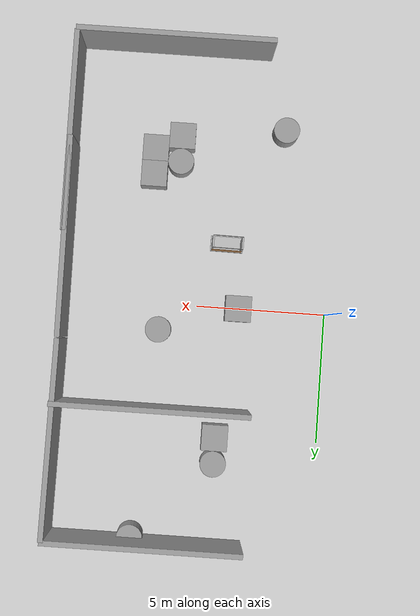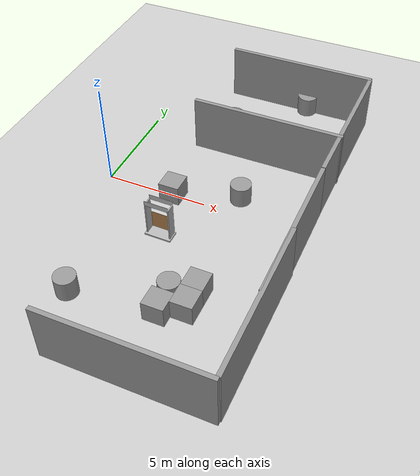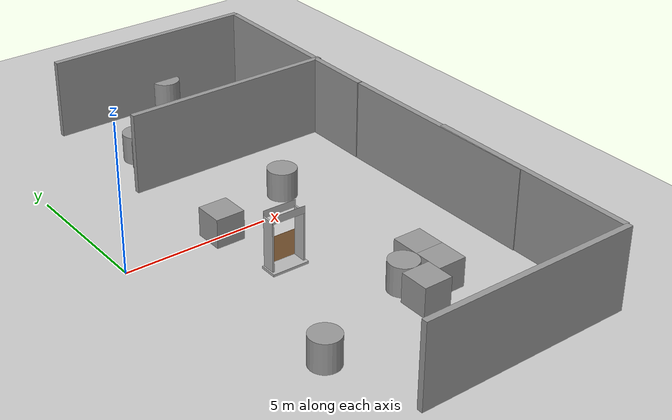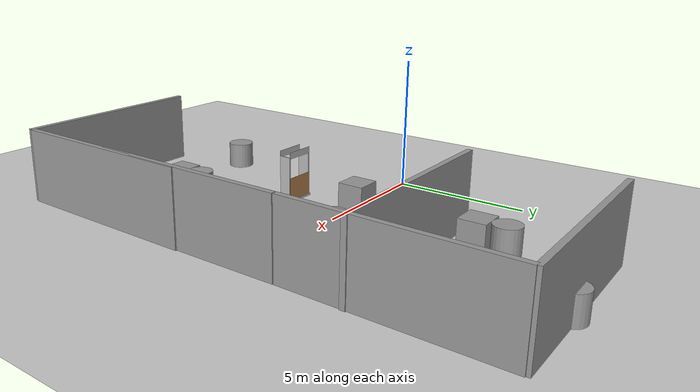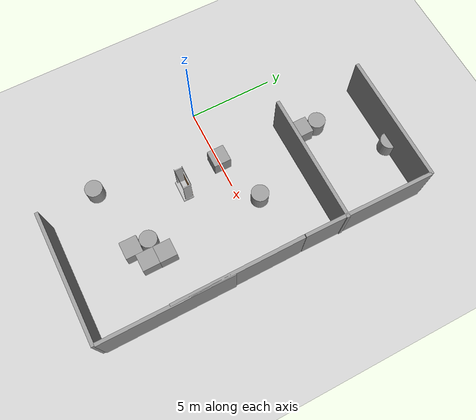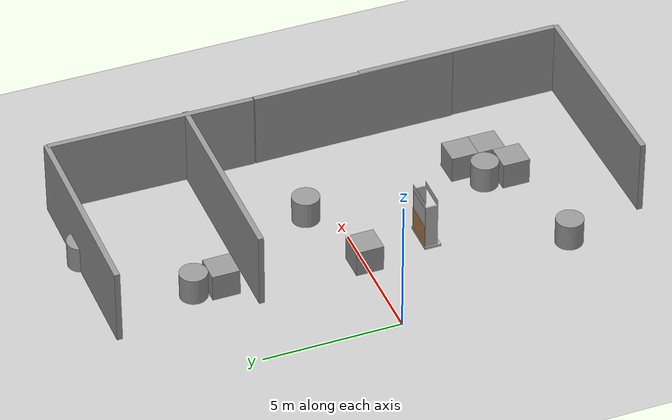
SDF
<sdf version="1.4">
 <world name="default">
  <model name="ground_plane">
   <static>1</static>
   <link name="link">
    <collision name="collision">
     <geometry><plane><normal>0 0 1</normal><size>100 100</size></plane></geometry>
     <surface><friction><ode><mu>100</mu><mu2>50</mu2></ode></friction></surface>
    </collision>
    <visual name="visual">
     <cast_shadows>0</cast_shadows>
     <geometry><plane><normal>0 0 1</normal><size>100 100</size></plane></geometry>
     <material>
      <script><uri>file://media/materials/scripts/gazebo.material</uri><name>Gazebo/Grey</name></script>
     </material>
    </visual>
    <velocity_decay><linear>0</linear><angular>0</angular></velocity_decay>
   </link>
  </model>
  <model name="grey_wall_1">
   <static>1</static>
   <link name="link">
    <pose>0 0 1.4 0 -0 0</pose>
    <collision name="collision"><geometry><box><size>7.5 0.2 2.8</size></box></geometry></collision>
    <visual name="visual">
     <cast_shadows>0</cast_shadows>
     <geometry><box><size>7.5 0.2 2.8</size></box></geometry>
     <material>
      <script>
       <uri>model://grey_wall/materials/scripts</uri>
       <uri>model://grey_wall/materials/textures</uri>
       <name>vrc/grey_wall</name>
      </script>
     </material>
    </visual>
    <velocity_decay><linear>0</linear><angular>0</angular></velocity_decay>
   </link>
   <pose>6.47505 9.08721 0 0 -0 0</pose>
  </model>
  <model name="grey_wall_4">
   <static>1</static>
   <link name="link">
    <pose>0 0 1.4 0 -0 0</pose>
    <collision name="collision"><geometry><box><size>7.5 0.2 2.8</size></box></geometry></collision>
    <visual name="visual">
     <cast_shadows>0</cast_shadows>
     <geometry><box><size>7.5 0.2 2.8</size></box></geometry>
     <material>
      <script>
       <uri>model://grey_wall/materials/scripts</uri>
       <uri>model://grey_wall/materials/textures</uri>
       <name>vrc/grey_wall</name>
      </script>
     </material>
    </visual>
    <velocity_decay><linear>0</linear><angular>0</angular></velocity_decay>
   </link>
   <pose>6.46119 -10 0 0 -0 0</pose>
  </model>
  <model name="grey_wall_5">
   <static>1</static>
   <link name="link">
    <pose>0 0 1.4 0 -0 0</pose>
    <collision name="collision"><geometry><box><size>7.5 0.2 2.8</size></box></geometry></collision>
    <visual name="visual">
     <cast_shadows>0</cast_shadows>
     <geometry><box><size>7.5 0.2 2.8</size></box></geometry>
     <material>
      <script>
       <uri>model://grey_wall/materials/scripts</uri>
       <uri>model://grey_wall/materials/textures</uri>
       <name>vrc/grey_wall</name>
      </script>
     </material>
    </visual>
    <velocity_decay><linear>0</linear><angular>0</angular></velocity_decay>
   </link>
   <pose>10.1266 5.31585 0 0 0 -1.58058</pose>
  </model>
  <model name="grey_wall_6">
   <static>1</static>
   <link name="link">
    <pose>0 0 1.4 0 -0 0</pose>
    <collision name="collision"><geometry><box><size>7.5 0.2 2.8</size></box></geometry></collision>
    <visual name="visual">
     <cast_shadows>0</cast_shadows>
     <geometry><box><size>7.5 0.2 2.8</size></box></geometry>
     <material>
      <script>
       <uri>model://grey_wall/materials/scripts</uri>
       <uri>model://grey_wall/materials/textures</uri>
       <name>vrc/grey_wall</name>
      </script>
     </material>
    </visual>
    <velocity_decay><linear>0</linear><angular>0</angular></velocity_decay>
   </link>
   <pose>10.1134 -2.21796 0 0 0 -1.566</pose>
  </model>
  <model name="grey_wall_7">
   <static>1</static>
   <link name="link">
    <pose>0 0 1.4 0 -0 0</pose>
    <collision name="collision"><geometry><box><size>7.5 0.2 2.8</size></box></geometry></collision>
    <visual name="visual">
     <cast_shadows>0</cast_shadows>
     <geometry><box><size>7.5 0.2 2.8</size></box></geometry>
     <material>
      <script>
       <uri>model://grey_wall/materials/scripts</uri>
       <uri>model://grey_wall/materials/textures</uri>
       <name>vrc/grey_wall</name>
      </script>
     </material>
    </visual>
    <velocity_decay><linear>0</linear><angular>0</angular></velocity_decay>
   </link>
   <pose>10.161 -6.18012 0 0 -0 1.5699</pose>
  </model>
  <model name="grey_wall_12">
   <static>1</static>
   <link name="link">
    <pose>0 0 1.4 0 -0 0</pose>
    <collision name="collision"><geometry><box><size>7.5 0.2 2.8</size></box></geometry></collision>
    <visual name="visual">
     <cast_shadows>0</cast_shadows>
     <geometry><box><size>7.5 0.2 2.8</size></box></geometry>
     <material>
      <script>
       <uri>model://grey_wall/materials/scripts</uri>
       <uri>model://grey_wall/materials/textures</uri>
       <name>vrc/grey_wall</name>
      </script>
     </material>
    </visual>
    <velocity_decay><linear>0</linear><angular>0</angular></velocity_decay>
   </link>
   <pose>6.50522 4 0 0 -0 0</pose>
  </model>
  <model name="frc2016_drawbridge_0">
   <link name="base">
    <inertial>
     <mass>10</mass>
     <pose>0 0 1 0 -0 0</pose>
     <inertia><ixx>3.64907</ixx><ixy>0</ixy><ixz>0</ixz><iyy>4.67075</iyy><iyz>0</iyz><izz>1.66649</izz></inertia>
    </inertial>
    <visual name="platform">
     <pose>0 0 0.0425 0 -0 0</pose>
     <geometry><box><size>1.27 0.5969 0.085</size></box></geometry>
    </visual>
    <collision name="platform">
     <pose>0 0 0.0425 0 -0 0</pose>
     <geometry><box><size>1.27 0.5969 0.085</size></box></geometry>
    </collision>
    <visual name="right_wall">
     <pose>0.55879 0.04444 0.889 0 -0 0</pose>
     <geometry><box><size>0.05715 0.45698 1.77165</size></box></geometry>
    </visual>
    <collision name="right_wall">
     <pose>0.55879 0.04444 0.889 0 -0 0</pose>
     <geometry><box><size>0.05715 0.45698 1.77165</size></box></geometry>
    </collision>
    <visual name="left_wall">
     <pose>-0.55879 0.04444 0.889 0 -0 0</pose>
     <geometry><box><size>0.05715 0.45698 1.77165</size></box></geometry>
    </visual>
    <collision name="left_wall">
     <pose>-0.55879 0.04444 0.889 0 -0 0</pose>
     <geometry><box><size>0.05715 0.45698 1.77165</size></box></geometry>
    </collision>
    <visual name="front_upper_wall">
     <pose>0 0.27611 1.84286 0 -0 0</pose>
     <geometry><box><size>1.1557 0.006347 0.254</size></box></geometry>
    </visual>
    <collision name="front_upper_wall">
     <pose>0 0.27611 1.84286 0 -0 0</pose>
     <geometry><box><size>1.1557 0.006347 0.254</size></box></geometry>
    </collision>
    <visual name="back_upper_wall">
     <pose>0 -0.18722 1.84286 0 -0 0</pose>
     <geometry><box><size>1.1557 0.006347 0.254</size></box></geometry>
    </visual>
    <collision name="back_upper_wall">
     <pose>0 -0.18722 1.84286 0 -0 0</pose>
     <geometry><box><size>1.1557 0.006347 0.254</size></box></geometry>
    </collision>
    <velocity_decay><linear>0</linear><angular>0</angular></velocity_decay>
   </link>
   <link name="bridge">
    <pose>0 0.28245 0.50577 0 -0 0</pose>
    <inertial>
     <mass>2</mass>
     <pose>0 -0.28245 -0.50577 0 -0 0</pose>
     <inertia>
      <ixx>0.139361</ixx>
      <ixy>0</ixy>
      <ixz>0</ixz>
      <iyy>0.357088</iyy>
      <iyz>0</iyz>
      <izz>0.217741</izz>
     </inertia>
    </inertial>
    <visual name="visual">
     <geometry><box><size>1.14298 0.006347 0.9144</size></box></geometry>
     <material><script><name>Gazebo/WoodFloor</name><uri>__default__</uri></script></material>
    </visual>
    <collision name="collision"><geometry><box><size>1.14298 0.006347 0.9144</size></box></geometry></collision>
    <velocity_decay><linear>0</linear><angular>0</angular></velocity_decay>
   </link>
   <joint name="bridge_joint" type="revolute">
    <pose>0 0 -0.4172 0 -0 0</pose>
    <parent>base</parent>
    <child>bridge</child>
    <axis><xyz>1 0 0</xyz><limit><lower>-2</lower><upper>0</upper></limit></axis>
   </joint>
   <pose>4.00091 -2.50737 -2e-06 -2e-06 2e-06 -0.013906</pose>
   <static>0</static>
  </model>
  <model name="unit_box_2">
   <pose>4 5 0.5 0 -0 2e-06</pose>
   <link name="link">
    <inertial>
     <mass>1</mass>
     <inertia><ixx>1</ixx><ixy>0</ixy><ixz>0</ixz><iyy>1</iyy><iyz>0</iyz><izz>1</izz></inertia>
    </inertial>
    <collision name="collision"><geometry><box><size>1 1 1</size></box></geometry></collision>
    <visual name="visual">
     <geometry><box><size>1 1 1</size></box></geometry>
     <material>
      <script><uri>file://media/materials/scripts/gazebo.material</uri><name>Gazebo/Grey</name></script>
     </material>
    </visual>
    <velocity_decay><linear>0</linear><angular>0</angular></velocity_decay>
   </link>
   <static>0</static>
  </model>
  <model name="unit_box_3">
   <pose>7 -5 0.5 0 0 -3e-06</pose>
   <link name="link">
    <inertial>
     <mass>1</mass>
     <inertia><ixx>1</ixx><ixy>0</ixy><ixz>0</ixz><iyy>1</iyy><iyz>0</iyz><izz>1</izz></inertia>
    </inertial>
    <collision name="collision"><geometry><box><size>1 1 1</size></box></geometry></collision>
    <visual name="visual">
     <geometry><box><size>1 1 1</size></box></geometry>
     <material>
      <script><uri>file://media/materials/scripts/gazebo.material</uri><name>Gazebo/Grey</name></script>
     </material>
    </visual>
    <velocity_decay><linear>0</linear><angular>0</angular></velocity_decay>
   </link>
   <static>0</static>
  </model>
  <model name="unit_cylinder_1">
   <pose>5.99999 -5.52642 0.499998 1e-06 -1e-06 -1e-06</pose>
   <link name="link">
    <inertial>
     <mass>1</mass>
     <inertia><ixx>1</ixx><ixy>0</ixy><ixz>0</ixz><iyy>1</iyy><iyz>0</iyz><izz>1</izz></inertia>
    </inertial>
    <collision name="collision">
     <geometry><cylinder><radius>0.5</radius><length>1</length></cylinder></geometry>
    </collision>
    <visual name="visual">
     <geometry><cylinder><radius>0.5</radius><length>1</length></cylinder></geometry>
     <material>
      <script><uri>file://media/materials/scripts/gazebo.material</uri><name>Gazebo/Grey</name></script>
     </material>
    </visual>
    <velocity_decay><linear>0</linear><angular>0</angular></velocity_decay>
   </link>
   <static>0</static>
  </model>
  <model name="unit_box_4">
   <pose>7 -6 0.5 0 0 -1e-06</pose>
   <link name="link">
    <inertial>
     <mass>1</mass>
     <inertia><ixx>1</ixx><ixy>0</ixy><ixz>0</ixz><iyy>1</iyy><iyz>0</iyz><izz>1</izz></inertia>
    </inertial>
    <collision name="collision"><geometry><box><size>1 1 1</size></box></geometry></collision>
    <visual name="visual">
     <geometry><box><size>1 1 1</size></box></geometry>
     <material>
      <script><uri>file://media/materials/scripts/gazebo.material</uri><name>Gazebo/Grey</name></script>
     </material>
    </visual>
    <velocity_decay><linear>0</linear><angular>0</angular></velocity_decay>
   </link>
   <static>0</static>
  </model>
  <model name="unit_box_5">
   <pose>6 -6.52642 0.5 0 -0 2e-06</pose>
   <link name="link">
    <inertial>
     <mass>1</mass>
     <inertia><ixx>1</ixx><ixy>0</ixy><ixz>0</ixz><iyy>1</iyy><iyz>0</iyz><izz>1</izz></inertia>
    </inertial>
    <collision name="collision"><geometry><box><size>1 1 1</size></box></geometry></collision>
    <visual name="visual">
     <geometry><box><size>1 1 1</size></box></geometry>
     <material>
      <script><uri>file://media/materials/scripts/gazebo.material</uri><name>Gazebo/Grey</name></script>
     </material>
    </visual>
    <velocity_decay><linear>0</linear><angular>0</angular></velocity_decay>
   </link>
   <static>0</static>
  </model>
  <model name="unit_cylinder_2">
   <pose>2 -7 0.499992 -1e-06 -0 0</pose>
   <link name="link">
    <inertial>
     <mass>1</mass>
     <inertia><ixx>1</ixx><ixy>0</ixy><ixz>0</ixz><iyy>1</iyy><iyz>0</iyz><izz>1</izz></inertia>
    </inertial>
    <collision name="collision">
     <geometry><cylinder><radius>0.5</radius><length>1</length></cylinder></geometry>
    </collision>
    <visual name="visual">
     <geometry><cylinder><radius>0.5</radius><length>1</length></cylinder></geometry>
     <material>
      <script><uri>file://media/materials/scripts/gazebo.material</uri><name>Gazebo/Grey</name></script>
     </material>
    </visual>
    <velocity_decay><linear>0</linear><angular>0</angular></velocity_decay>
   </link>
   <static>0</static>
  </model>
  <model name="unit_cylinder_3">
   <pose>6.44555 1 0.499998 1e-06 -0 0</pose>
   <link name="link">
    <inertial>
     <mass>1</mass>
     <inertia><ixx>1</ixx><ixy>0</ixy><ixz>0</ixz><iyy>1</iyy><iyz>0</iyz><izz>1</izz></inertia>
    </inertial>
    <collision name="collision">
     <geometry><cylinder><radius>0.5</radius><length>1</length></cylinder></geometry>
    </collision>
    <visual name="visual">
     <geometry><cylinder><radius>0.5</radius><length>1</length></cylinder></geometry>
     <material>
      <script><uri>file://media/materials/scripts/gazebo.material</uri><name>Gazebo/Grey</name></script>
     </material>
    </visual>
    <velocity_decay><linear>0</linear><angular>0</angular></velocity_decay>
   </link>
   <static>0</static>
  </model>
  <model name="unit_box_8">
   <pose>3.41973 0 0.5 0 -0 0</pose>
   <link name="link">
    <inertial>
     <mass>1</mass>
     <inertia><ixx>1</ixx><ixy>0</ixy><ixz>0</ixz><iyy>1</iyy><iyz>0</iyz><izz>1</izz></inertia>
    </inertial>
    <collision name="collision"><geometry><box><size>1 1 1</size></box></geometry></collision>
    <visual name="visual">
     <geometry><box><size>1 1 1</size></box></geometry>
     <material>
      <script><uri>file://media/materials/scripts/gazebo.material</uri><name>Gazebo/Grey</name></script>
     </material>
    </visual>
    <velocity_decay><linear>0</linear><angular>0</angular></velocity_decay>
   </link>
   <static>0</static>
  </model>
  <model name="unit_cylinder_6">
   <pose>4 6 0.499997 -0 -0 -0</pose>
   <link name="link">
    <inertial>
     <mass>1</mass>
     <inertia><ixx>1</ixx><ixy>0</ixy><ixz>0</ixz><iyy>1</iyy><iyz>0</iyz><izz>1</izz></inertia>
    </inertial>
    <collision name="collision">
     <geometry><cylinder><radius>0.5</radius><length>1</length></cylinder></geometry>
    </collision>
    <visual name="visual">
     <geometry><cylinder><radius>0.5</radius><length>1</length></cylinder></geometry>
     <material>
      <script><uri>file://media/materials/scripts/gazebo.material</uri><name>Gazebo/Grey</name></script>
     </material>
    </visual>
    <velocity_decay><linear>0</linear><angular>0</angular></velocity_decay>
   </link>
   <static>0</static>
  </model>
  <model name="unit_cylinder_7">
   <pose>7 9 0.499992 0 -0 0</pose>
   <link name="link">
    <inertial>
     <mass>1</mass>
     <inertia><ixx>1</ixx><ixy>0</ixy><ixz>0</ixz><iyy>1</iyy><iyz>0</iyz><izz>1</izz></inertia>
    </inertial>
    <collision name="collision">
     <geometry><cylinder><radius>0.5</radius><length>1</length></cylinder></geometry>
    </collision>
    <visual name="visual">
     <geometry><cylinder><radius>0.5</radius><length>1</length></cylinder></geometry>
     <material>
      <script><uri>file://media/materials/scripts/gazebo.material</uri><name>Gazebo/Grey</name></script>
     </material>
    </visual>
    <velocity_decay><linear>0</linear><angular>0</angular></velocity_decay>
   </link>
   <static>0</static>
  </model>
 </world>
</sdf>
